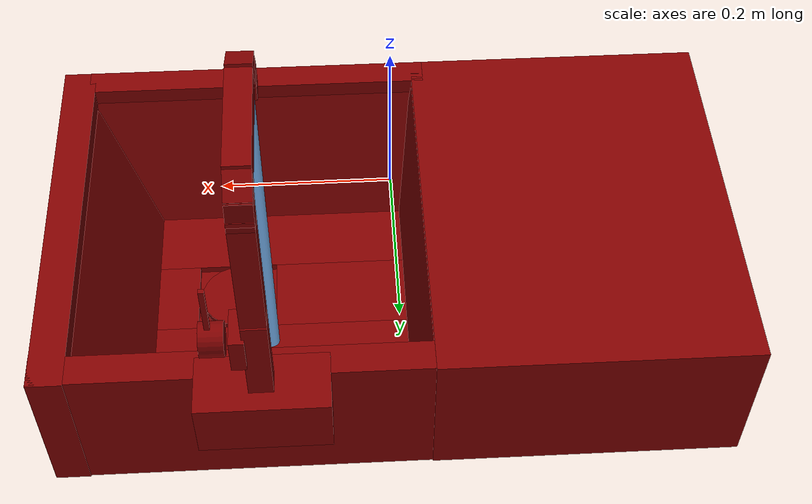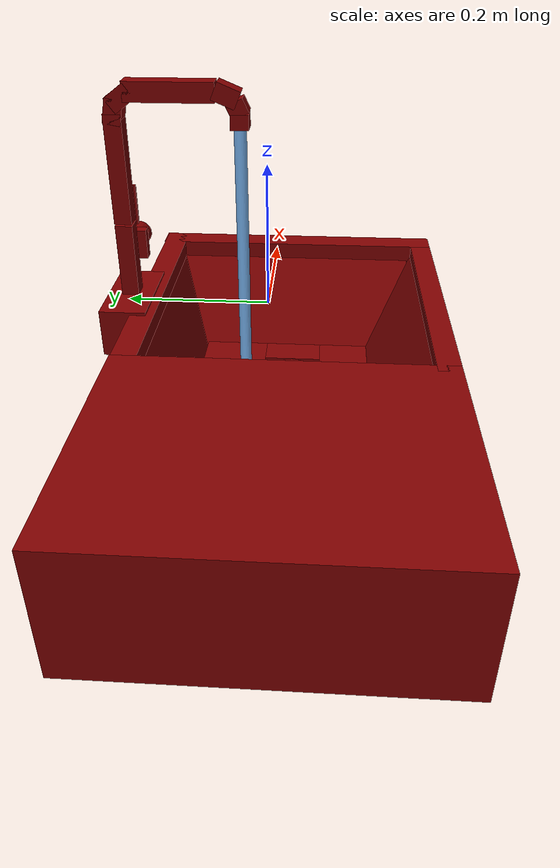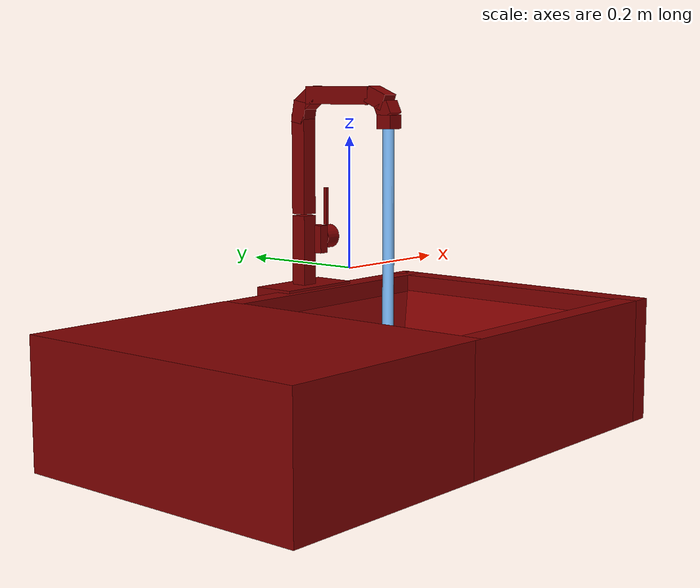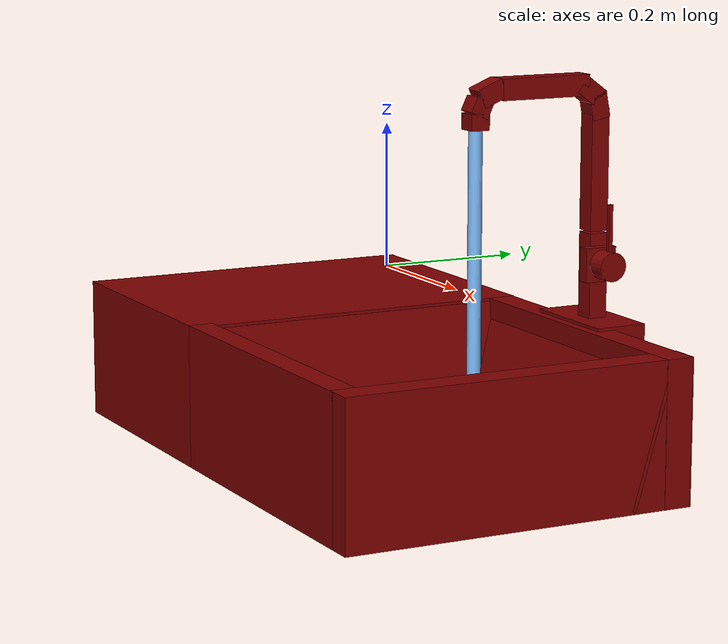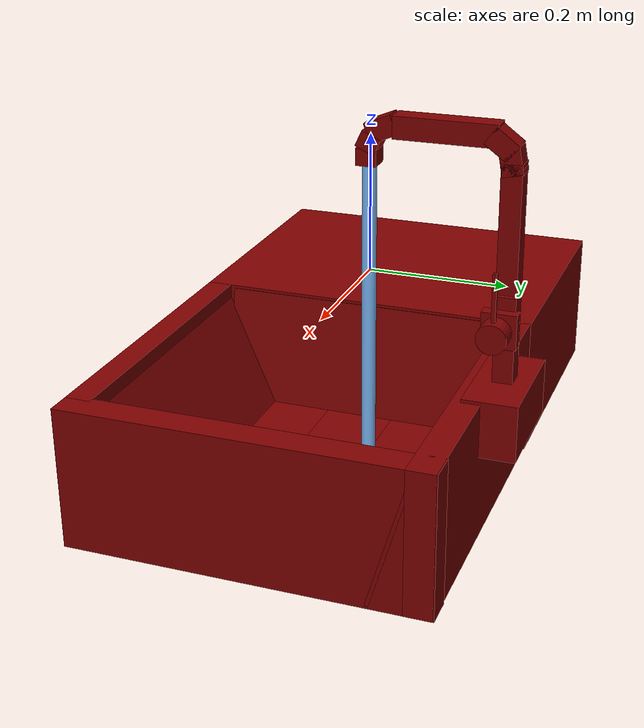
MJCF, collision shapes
<mujoco model="model">
  <compiler angle="radian"/>
  <asset>
    <mesh file="visuals/handle.obj" name="handle_vis"/>
    <mesh file="visuals/Body001.obj" name="Body001_vis"/>
    <mesh file="visuals/Funnel001.obj" name="Funnel001_vis"/>
    <mesh file="visuals/spout.obj" name="spout_vis"/>
    <texture file="visuals/T_BC001.png" name="Body001_material" type="2d"/>
    <material name="Body001_material" rgba="1 1 1 1.0" texture="Body001_material" shininess="0.141421377658844" specular="0.3103448502657381"/>
    <texture file="visuals/T_BC001.png" name="handle_material" type="2d"/>
    <material name="handle_material" rgba="1 1 1 1.0" texture="handle_material" shininess="0.141421377658844" specular="0.3103448502657381"/>
    <texture file="visuals/T_BC001.png" name="Funnel001_material" type="2d"/>
    <material name="Funnel001_material" rgba="1 1 1 1.0" texture="Funnel001_material" shininess="0.141421377658844" specular="0.3103448502657381"/>
    <texture file="visuals/T_BC001.png" name="spout_material" type="2d"/>
    <material name="spout_material" rgba="1 1 1 1.0" texture="spout_material" shininess="0.141421377658844" specular="0.3103448502657381"/>
  </asset>
  <default>
    <default class="visual">
      <geom conaffinity="0" contype="0" group="1" type="mesh"/>
    </default>
    <default class="collision">
      <geom group="0" rgba="0.5 0 0 0.5"/>
    </default>
    <default class="spawn">
      <geom group="0" rgba="1 1 1 0.5" contype="0" conaffinity="0"/>
      <site group="0" rgba="1 1 1 0.5"/>
    </default>
    <default class="region">
      <geom group="1" conaffinity="0" contype="0" rgba="0 1 0 0"/>
    </default>
  </default>
  <worldbody>
    <body>
      <body name="object">
        <geom mesh="Body001_vis" type="mesh" solimp="0.998 0.998 0.001" solref="0.001 1" density="100" friction="0.95 0.3 0.1" class="visual" material="Body001_material"/>
        <geom class="collision" type="box" pos="0.1665966808795929 -0.2585151493549347 -0.17067964375019073" size="0.22345054149627686 0.017767369747161865 0.10057337582111359" quat="1.0 0.0 0.0 0.0"/>
        <geom class="collision" type="box" pos="0.1906604766845703 0.2080925703048706 -0.17067964375019073" size="0.2343486249446869 0.01933664083480835 0.10057337582111359" quat="1.0 0.0 0.0 0.0"/>
        <geom class="collision" type="box" pos="0.40362340211868286 -0.023657530546188354 -0.17067964375019073" size="0.02116328477859497 0.25254327058792114 0.10057337582111359" quat="1.0 0.0 0.0 0.0"/>
        <geom class="collision" type="box" pos="0.17355045676231384 -0.027308836579322815 -0.27125322818756104" size="0.21415582299232483 0.21705441176891327 2.3096799850463867e-07" quat="1.0 0.0 0.0 0.0"/>
        <geom class="collision" type="box" pos="0.15694843232631683 0.2389191836118698 -0.10482294112443924" size="0.07781156897544861 0.03736326843500137 0.039299458265304565" quat="1.0 0.0 0.0 0.0"/>
        <geom class="collision" type="box" pos="0.15766698122024536 0.2393326461315155 -0.005943674594163895" size="0.014406781643629074 0.013618595898151398 0.05938158556818962" quat="1.0 0.0 0.0 0.0"/>
        <geom class="collision" type="box" pos="0.1776135265827179 0.23477494716644287 0.012284891679883003" size="0.008593222126364708 0.02361196093261242 0.023806529119610786" quat="1.0 0.0 0.0 0.0"/>
        <geom class="collision" type="box" pos="-0.2331230342388153 -0.023698389530181885 -0.17067964375019073" size="0.19166365265846252 0.2525840997695923 0.10057337582111359" quat="1.0 0.0 0.0 0.0"/>
        <geom class="collision" type="box" pos="0.14580988883972168 0.08416131138801575 -0.25227195024490356" size="0.17189639806747437 0.05748089775443077 0.004806618671864271" quat="1.0 0.0 0.0 0.0"/>
        <geom class="collision" type="box" pos="0.14580988883972168 -0.13232864439487457 -0.25227195024490356" size="0.17189639806747437 0.05748089775443077 0.004806618671864271" quat="1.0 0.0 0.0 0.0"/>
        <geom class="collision" type="box" pos="0.06254567205905914 -0.024083666503429413 -0.25227195024490356" size="0.08863218128681183 0.05076408013701439 0.004806618671864271" quat="1.0 0.0 0.0 0.0"/>
        <geom class="collision" type="box" pos="0.2859920263290405 -0.024083666503429413 -0.25227195024490356" size="0.03171427547931671 0.05076408013701439 0.004806618671864271" quat="1.0 0.0 0.0 0.0"/>
        <geom class="collision" type="box" pos="0.1906604766845703 0.17075204849243164 -0.17017538845539093" size="0.2343486249446869 0.0025818401481956244 0.10163593292236328" quat="0.9898218512535095 -0.142312154173851 -0.0 0.0"/>
        <geom class="collision" type="box" pos="0.1711283177137375 -0.2042708396911621 -0.17052632570266724" size="0.2343486249446869 0.0025818401481956244 0.10163593292236328" quat="0.9736520051956177 0.22803905606269836 0.0 0.0"/>
        <geom class="collision" type="box" pos="0.3515014350414276 -0.01666770502924919 -0.16638383269309998" size="0.2179635465145111 0.0025818401481956244 0.10163593292236328" quat="0.6884759664535522 0.16124796867370605 0.16124795377254486 0.6884759068489075"/>
        <geom class="collision" type="box" pos="-0.032640937715768814 -0.01666770502924919 -0.16625551879405975" size="0.2179635465145111 0.0025818406138569117 0.09228679537773132" quat="0.7060168385505676 -0.03924567252397537 -0.03924565017223358 0.7060168385505676"/>
        <body name="handle">
          <joint axis="1.0 0.0 0.0" pos="0.20590585470199585 0.23378902673721313 0.01414506509900093" limited="true" name="handle_joint_hinge_0" type="hinge" range="-0.7853981633974483 0.7853981633974483" damping="1" frictionloss="1" armature=".01" stiffness="0.05"/>
          <joint axis="0.0 1.0 0.0" pos="0.20590585470199585 0.23378902673721313 0.01414506509900093" limited="true" name="handle_joint_hinge_1" type="hinge" range="0.0 0.17453292519943295" damping="1" frictionloss="1" armature=".01" stiffness="0.05"/>
          <geom mesh="handle_vis" type="mesh" solimp="0.998 0.998 0.001" solref="0.001 1" density="100" friction="0.95 0.3 0.1" class="visual" material="handle_material"/>
          <geom class="collision" type="cylinder" pos="0.20562367141246796 0.2335570752620697 0.013662219047546387" size="0.020145172253251076 0.013994906097650528" quat="0.7071068286895752 -0.0 0.7071067690849304 0.0"/>
          <geom class="collision" type="box" pos="0.20873114466667175 0.2335055023431778 0.06633404642343521" size="0.003144390881061554 0.0028439750894904137 0.032371636480093" quat="1.0 0.0 0.0 0.0"/>
        </body>
        <body name="Funnel001">
          <joint axis="0.0 0.0 1.0" pos="0.20261836051940918 -0.023610109463334084 -0.24470382928848267" limited="true" name="Funnel001_joint" range="0.0 0.1" type="slide" damping="1" frictionloss="1" armature=".01" stiffness="1" springref="-0.5"/>
          <geom mesh="Funnel001_vis" type="mesh" solimp="0.998 0.998 0.001" solref="0.001 1" density="100" friction="0.95 0.3 0.1" class="visual" material="Funnel001_material"/>
          <geom class="collision" type="cylinder" pos="0.20245426893234253 -0.024158285930752754 -0.25100478529930115" size="0.04809892177581787 0.004402054473757744" quat="1.0 0.0 0.0 0.0"/>
        </body>
        <body name="spout">
          <joint axis="0.0 0.0 1.0" pos="0.1567169725894928 0.23910272121429443 0.16301976144313812" limited="true" name="spout_joint" range="-1.0471975511965976 1.0471975511965976" type="hinge" damping="1" frictionloss="1" armature=".01" stiffness="0.05"/>
          <site type="cylinder" rgba="0.5 0.75 1 1" size="0.009647421538829803 0.23899467289447784" pos="0.1568230241537094 0.052035264670848846 -0.030578553676605225" name="water"/>
          <geom mesh="spout_vis" type="mesh" solimp="0.998 0.998 0.001" solref="0.001 1" density="100" friction="0.95 0.3 0.1" class="visual" material="spout_material"/>
          <geom class="collision" type="box" pos="0.15766698122024536 0.2393326461315155 0.14137934148311615" size="0.014406781643629074 0.013618595898151398 0.08504720777273178" quat="1.0 0.0 0.0 0.0"/>
          <geom class="collision" type="box" pos="0.15766698122024536 0.05444859713315964 0.23576682806015015" size="0.014406781643629074 0.013618596829473972 0.011216707527637482" quat="0.9767463207244873 -0.21439839899539948 -0.0 0.0"/>
          <geom class="collision" type="box" pos="0.15766698122024536 0.15369677543640137 0.2586138844490051" size="0.014406781643629074 0.06741032004356384 0.014789029955863953" quat="1.0 0.0 0.0 0.0"/>
          <geom class="collision" type="box" pos="0.15766698122024536 0.05170956999063492 0.21676479279994965" size="0.014406781643629074 0.013618596829473972 0.011216707527637482" quat="1.0 0.0 0.0 0.0"/>
          <geom class="collision" type="box" pos="0.15766698122024536 0.07074309140443802 0.25461408495903015" size="0.014406781643629074 0.013618596829473972 0.018483925610780716" quat="0.8309270143508911 -0.5563814043998718 -0.0 0.0"/>
          <geom class="collision" type="box" pos="0.15766698122024536 0.22575229406356812 0.24884842336177826" size="0.014406781643629074 0.013618596829473972 0.018483925610780716" quat="0.4496017098426819 -0.8932291269302368 -0.0 0.0"/>
          <geom class="collision" type="box" pos="0.15766698122024536 0.23739317059516907 0.22950401902198792" size="0.014406781643629074 0.013618596829473972 0.018483925610780716" quat="0.09119181334972382 -0.9958333373069763 -0.0 0.0"/>
        </body>
        <geom class="region" name="reg_main" type="box" pos="0.0 -2.9802322387695312e-08 -0.17038442194461823" size="0.42478668689727783 0.27628248929977417 0.10086904466152191"/>
        <geom class="region" name="reg_basin" type="box" pos="0.1792137511074543 -0.026071257889270782 -0.1607547327876091" size="0.2147565595805645 0.22077133506536484 0.08513806015253067"/>
      </body>
    </body>
  </worldbody>
  <actuator>
    <motor name="handle_joint_hinge_0_actuator" joint="handle_joint_hinge_0" gear="10"/>
    <motor name="handle_joint_hinge_1_actuator" joint="handle_joint_hinge_1" gear="10"/>
    <motor name="Funnel001_joint_actuator" joint="Funnel001_joint" gear="10"/>
    <motor name="spout_joint_actuator" joint="spout_joint" gear="10"/>
  </actuator>
</mujoco>
